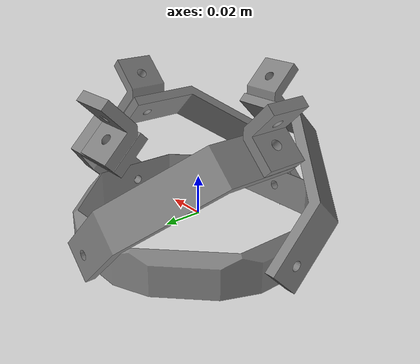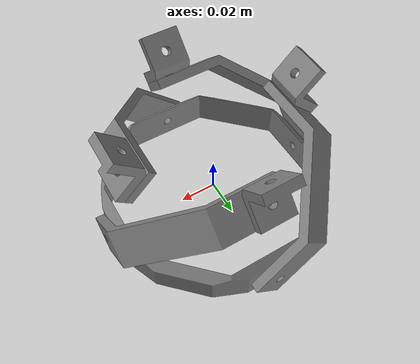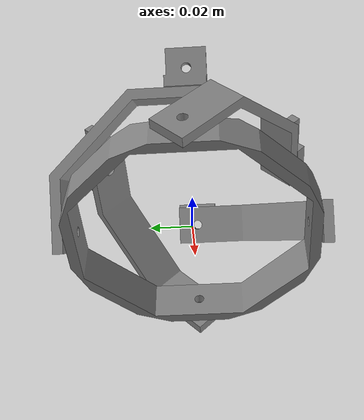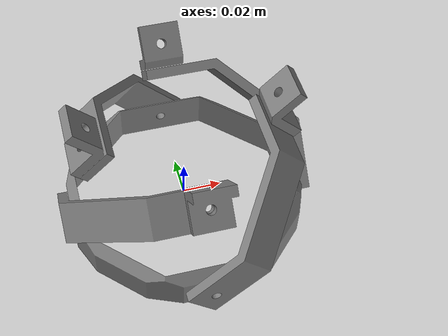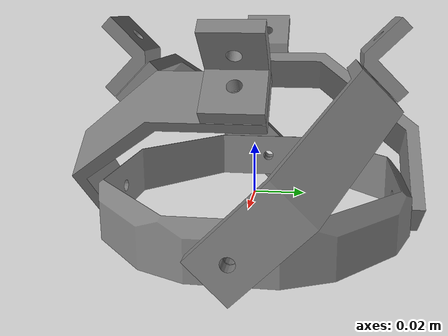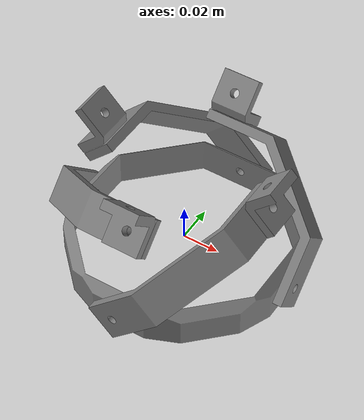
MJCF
<mujoco model="itp2">
  <compiler angle="radian" meshdir="meshes/"/>
  <asset>
    <mesh name="base_link" file="base_link.stl" scale="0.001 0.001 0.001"/>
    <mesh name="l_link_down1" file="l_link_down1.stl" scale="0.001 0.001 0.001"/>
    <mesh name="l_link_down2" file="l_link_down2.stl" scale="0.001 0.001 0.001"/>
    <mesh name="l_link_down3" file="l_link_down3.stl" scale="0.001 0.001 0.001"/>
    <mesh name="l_link_down4" file="l_link_down4.stl" scale="0.001 0.001 0.001"/>
    <mesh name="v_link1" file="v_link1.stl" scale="0.001 0.001 0.001"/>
    <mesh name="v_link2" file="v_link2.stl" scale="0.001 0.001 0.001"/>
    <mesh name="v_link3" file="v_link3.stl" scale="0.001 0.001 0.001"/>
    <mesh name="v_link4" file="v_link4.stl" scale="0.001 0.001 0.001"/>
  </asset>
  <worldbody>
    <body name="base_link">
      <inertial pos="0 0 0" quat="0.5 0.5 -0.5 0.5" mass="0.312691" diaginertia="0.00110446 0.000562756 0.000562756"/>
      <geom type="mesh" contype="0" conaffinity="0" group="1" density="0" mesh="base_link"/>
      <geom type="mesh" mesh="base_link"/>
      <body name="l_link_down1" pos="0.060355 0 0">
        <inertial pos="-0.0207331 -0.0280169 0.0280169" quat="-1.41001e-07 0.707107 0.5 0.5" mass="0.0964305" diaginertia="0.000102991 9.92561e-05 1.02616e-05"/>
        <joint name="Revolute_6" pos="0 0 0" axis="-1 0 0"/>
        <geom pos="-0.060355 0 0" type="mesh" contype="0" conaffinity="0" group="1" density="0" mesh="l_link_down1"/>
        <geom pos="-0.060355 0 0" type="mesh" mesh="l_link_down1"/>
        <body name="v_link4" pos="-0.060355 0 0.065755">
          <inertial pos="0 -0.0491587 -0.010755" quat="0.707107 0 0 0.707107" mass="0.02882" diaginertia="2.8657e-06 2.33879e-06 1.49746e-06"/>
          <joint name="Revolute_16" pos="0 0 0" axis="0 0.707107 -0.707107"/>
          <geom pos="0 0 -0.065755" type="mesh" contype="0" conaffinity="0" group="1" density="0" mesh="v_link4"/>
          <geom pos="0 0 -0.065755" type="mesh" mesh="v_link4"/>
        </body>
      </body>
      <body name="l_link_down2" pos="0 0.060355 0">
        <inertial pos="0.0280169 -0.0207331 0.0280169" quat="0.853553 0.353553 0.353553 -0.146447" mass="0.0964305" diaginertia="0.000102991 9.92561e-05 1.02616e-05"/>
        <joint name="Revolute_7" pos="0 0 0" axis="0 -1 0"/>
        <geom pos="0 -0.060355 0" type="mesh" contype="0" conaffinity="0" group="1" density="0" mesh="l_link_down2"/>
        <geom pos="0 -0.060355 0" type="mesh" mesh="l_link_down2"/>
        <body name="v_link1" pos="0 -0.060355 0.065755">
          <inertial pos="0.0491587 0 -0.010755" mass="0.02882" diaginertia="2.8657e-06 2.33879e-06 1.49746e-06"/>
          <joint name="Revolute_10" pos="0 0 0" axis="-0.707107 0 -0.707107"/>
          <geom pos="0 0 -0.065755" type="mesh" contype="0" conaffinity="0" group="1" density="0" mesh="v_link1"/>
          <geom pos="0 0 -0.065755" type="mesh" mesh="v_link1"/>
        </body>
      </body>
      <body name="l_link_down3" pos="-0.060355 0 0">
        <inertial pos="0.0207331 0.0280169 0.0280169" quat="-0.5 0.5 1.41001e-07 0.707107" mass="0.0964305" diaginertia="0.000102991 9.92561e-05 1.02616e-05"/>
        <joint name="Revolute_8" pos="0 0 0" axis="1 0 0"/>
        <geom pos="0.060355 0 0" type="mesh" contype="0" conaffinity="0" group="1" density="0" mesh="l_link_down3"/>
        <geom pos="0.060355 0 0" type="mesh" mesh="l_link_down3"/>
        <body name="v_link2" pos="0.060355 0 0.065755">
          <inertial pos="0 0.0491587 -0.010755" quat="0.707107 0 0 0.707107" mass="0.02882" diaginertia="2.8657e-06 2.33879e-06 1.49746e-06"/>
          <joint name="Revolute_12" pos="0 0 0" axis="0 -0.707107 -0.707107"/>
          <geom pos="0 0 -0.065755" type="mesh" contype="0" conaffinity="0" group="1" density="0" mesh="v_link2"/>
          <geom pos="0 0 -0.065755" type="mesh" mesh="v_link2"/>
        </body>
      </body>
      <body name="l_link_down4" pos="0 -0.060355 0">
        <inertial pos="-0.0280169 0.0207331 0.0280169" quat="0.353553 0.853553 -0.146447 0.353553" mass="0.0964305" diaginertia="0.000102991 9.92561e-05 1.02616e-05"/>
        <joint name="Revolute_9" pos="0 0 0" axis="0 1 0"/>
        <geom pos="0 0.060355 0" type="mesh" contype="0" conaffinity="0" group="1" density="0" mesh="l_link_down4"/>
        <geom pos="0 0.060355 0" type="mesh" mesh="l_link_down4"/>
        <body name="v_link3" pos="0 0.060355 0.065755">
          <inertial pos="-0.0491587 0 -0.010755" mass="0.02882" diaginertia="2.8657e-06 2.33879e-06 1.49746e-06"/>
          <joint name="Revolute_14" pos="0 0 0" axis="0.707107 0 -0.707107"/>
          <geom pos="0 0 -0.065755" type="mesh" contype="0" conaffinity="0" group="1" density="0" mesh="v_link3"/>
          <geom pos="0 0 -0.065755" type="mesh" mesh="v_link3"/>
        </body>
      </body>
    </body>
  </worldbody>
</mujoco>
